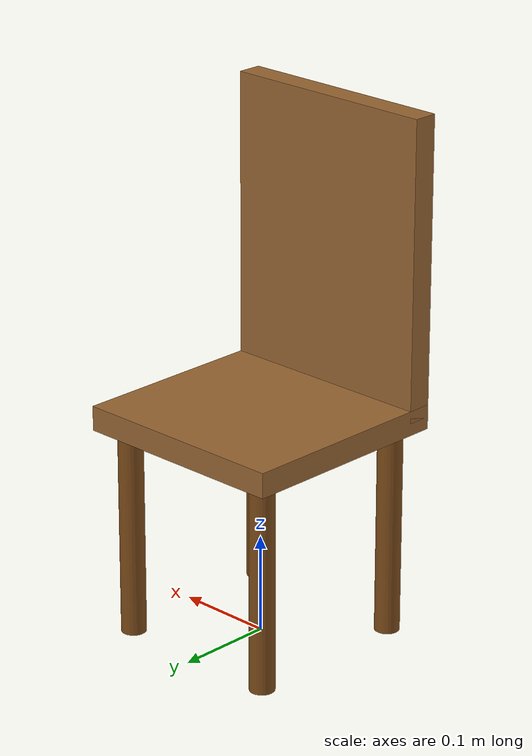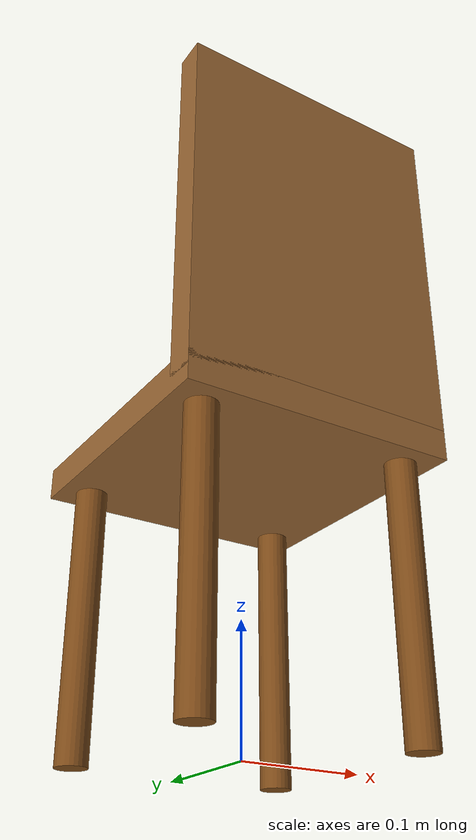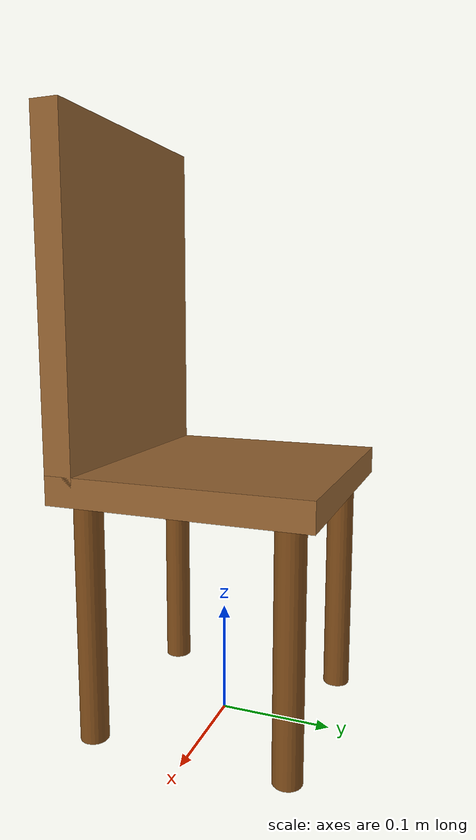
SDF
<?xml version="1.0" ?>
<sdf version="1.9">
  <model name="chair">
    <static>false</static>
    <pose>0 0 0 0 0 0</pose>

    <!-- ========== SEAT (Half Size) ========== -->
    <link name="seat">
      <pose>0 0 0.225 0 0 0</pose> <!-- Height: 0.45 → 0.225 -->
      <inertial>
        <mass>2.5</mass> <!-- Mass: 5.0 → 2.5 -->
      </inertial>
      <collision name="seat_collision">
        <geometry>
          <box>
            <size>0.225 0.225 0.025</size> <!-- Size: 0.45×0.45×0.05 → 0.225×0.225×0.025 -->
          </box>
        </geometry>
      </collision>
      <visual name="seat_visual">
        <geometry>
          <box>
            <size>0.225 0.225 0.025</size> <!-- Same as collision -->
          </box>
        </geometry>
        <material>
          <ambient>0.6 0.4 0.2 1</ambient>
          <diffuse>0.6 0.4 0.2 1</diffuse>
        </material>
      </visual>
    </link>

    <!-- ========== BACKREST (Half Size) ========== -->
    <link name="backrest">
      <pose>0 -0.1 0.375 0 0 0</pose>
      <inertial>
        <mass>1.5</mass> <!-- Mass: 3.0 → 1.5 -->
      </inertial>
      <collision name="backrest_collision">
        <geometry>
          <box>
            <size>0.225 0.025 0.3</size> <!-- Size: 0.45×0.05×0.6 → 0.225×0.025×0.3 -->
          </box>
        </geometry>
      </collision>
      <visual name="backrest_visual">
        <geometry>
          <box>
            <size>0.225 0.025 0.3</size> <!-- Same as collision -->
          </box>
        </geometry>
        <material>
          <ambient>0.6 0.4 0.2 1</ambient>
          <diffuse>0.6 0.4 0.2 1</diffuse>
        </material>
      </visual>
    </link>

    <!-- ========== FRONT LEFT LEG (Half Size) ========== -->
    <link name="front_left_leg">
      <pose>0.0875 0.0875 0.1125 0 0 0</pose> <!-- Position: 0.175×0.175×0.225 → 0.0875×0.0875×0.1125 -->
      <collision name="front_left_leg_collision">
        <geometry>
          <cylinder>
            <radius>0.0125</radius> <!-- Radius: 0.025 → 0.0125 -->
            <length>0.225</length> <!-- Length: 0.45 → 0.225 -->
          </cylinder>
        </geometry>
      </collision>
      <visual name="front_left_leg_visual">
        <geometry>
          <cylinder>
            <radius>0.0125</radius>
            <length>0.225</length>
          </cylinder>
        </geometry>
        <material>
          <ambient>0.5 0.3 0.1 1</ambient>
          <diffuse>0.5 0.3 0.1 1</diffuse>
        </material>
      </visual>
    </link>

    <!-- ========== FRONT RIGHT LEG (Half Size) ========== -->
    <link name="front_right_leg">
      <pose>-0.0875 0.0875 0.1125 0 0 0</pose>
      <collision name="front_right_leg_collision">
        <geometry>
          <cylinder>
            <radius>0.0125</radius>
            <length>0.225</length>
          </cylinder>
        </geometry>
      </collision>
      <visual name="front_right_leg_visual">
        <geometry>
          <cylinder>
            <radius>0.0125</radius>
            <length>0.225</length>
          </cylinder>
        </geometry>
        <material>
          <ambient>0.5 0.3 0.1 1</ambient>
          <diffuse>0.5 0.3 0.1 1</diffuse>
        </material>
      </visual>
    </link>

    <!-- ========== BACK LEFT LEG (Half Size) ========== -->
    <link name="back_left_leg">
      <pose>0.0875 -0.0875 0.1125 0 0 0</pose>
      <collision name="back_left_leg_collision">
        <geometry>
          <cylinder>
            <radius>0.0125</radius>
            <length>0.225</length>
          </cylinder>
        </geometry>
      </collision>
      <visual name="back_left_leg_visual">
        <geometry>
          <cylinder>
            <radius>0.0125</radius>
            <length>0.225</length>
          </cylinder>
        </geometry>
        <material>
          <ambient>0.5 0.3 0.1 1</ambient>
          <diffuse>0.5 0.3 0.1 1</diffuse>
        </material>
      </visual>
    </link>

    <!-- ========== BACK RIGHT LEG (Half Size) ========== -->
    <link name="back_right_leg">
      <pose>-0.0875 -0.0875 0.1125 0 0 0</pose> <!-- Both X,Y: ±0.175 → ±0.0875 -->
      <collision name="back_right_leg_collision">
        <geometry>
          <cylinder>
            <radius>0.0125</radius>
            <length>0.225</length>
          </cylinder>
        </geometry>
      </collision>
      <visual name="back_right_leg_visual">
        <geometry>
          <cylinder>
            <radius>0.0125</radius>
            <length>0.225</length>
          </cylinder>
        </geometry>
        <material>
          <ambient>0.5 0.3 0.1 1</ambient>
          <diffuse>0.5 0.3 0.1 1</diffuse>
        </material>
      </visual>
    </link>

    <!-- ========== FIXED JOINTS ========== -->
    <joint name="seat_to_front_left_leg" type="fixed">
      <parent>seat</parent>
      <child>front_left_leg</child>
    </joint>

    <joint name="seat_to_front_right_leg" type="fixed">
      <parent>seat</parent>
      <child>front_right_leg</child>
    </joint>

    <joint name="seat_to_back_left_leg" type="fixed">
      <parent>seat</parent>
      <child>back_left_leg</child>
    </joint>

    <joint name="seat_to_back_right_leg" type="fixed">
      <parent>seat</parent>
      <child>back_right_leg</child>
    </joint>

    <joint name="seat_to_backrest" type="fixed">
      <parent>seat</parent>
      <child>backrest</child>
    </joint>
  </model>
</sdf>
